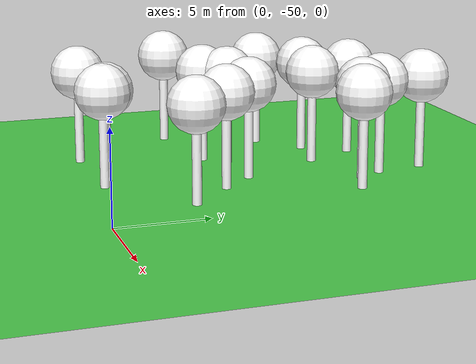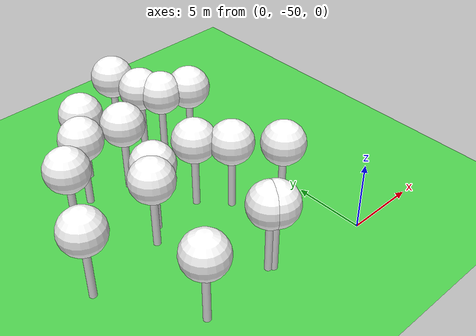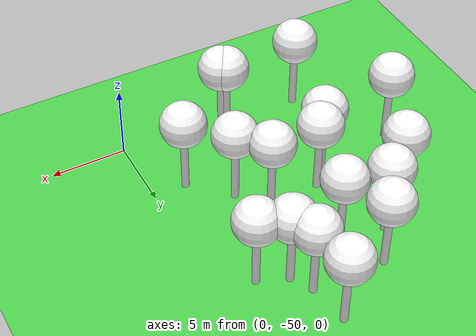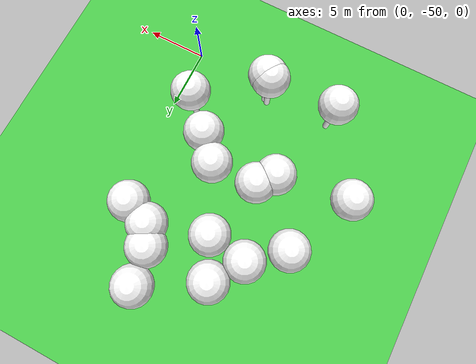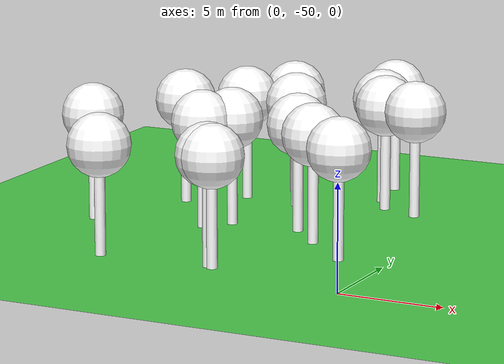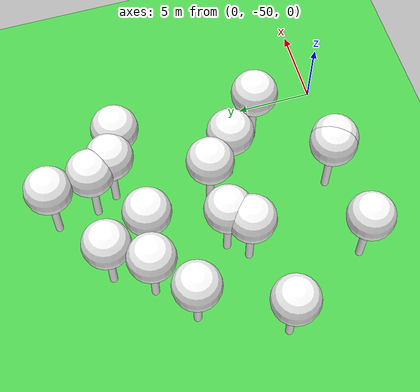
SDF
<sdf version="1.8">
 <world name="forest_world">
  <model name="tree_simple491">
   <static>1</static>
   <link name="link">
    <pose>0 0 0.1 0 -0 0</pose>
    <collision name="collision_trunk">
     <pose>0 0 2 0 -0 0</pose>
     <geometry><cylinder><radius>0.25</radius><length>4</length></cylinder></geometry>
    </collision>
    <collision name="collision_treetop">
     <pose>0 0 5.2 0 -0 0</pose>
     <geometry><sphere><radius>1.5</radius></sphere></geometry>
    </collision>
    <visual name="trunk_491">
     <pose>0 0 2 0 -0 0</pose>
     <geometry><cylinder><radius>0.25</radius><length>4</length></cylinder></geometry>
     <material>
      <ambient>0.5 0.5 0.5 1</ambient>
      <diffuse>1.0 1.0 1.0 1</diffuse>
      <specular>0.0 0.0 0.0 1</specular>
      <pbr>
       <metal>
        <albedo_map>file://textures/tree_simple_trunk.jpg</albedo_map>
        <metalness>0.0</metalness>
        <roughness>0.8</roughness>
       </metal>
      </pbr>
     </material>
    </visual>
    <visual name="treetop_491">
     <pose>0 0 5.2 0 -0 0</pose>
     <geometry><sphere><radius>1.5</radius></sphere></geometry>
     <material>
      <ambient>0.5 0.5 0.5 1</ambient>
      <diffuse>1.0 1.0 1.0 1</diffuse>
      <specular>0.0 0.0 0.0 1</specular>
      <pbr>
       <metal>
        <albedo_map>file://textures/tree_simple_treetop.jpg</albedo_map>
        <metalness>0.0</metalness>
        <roughness>0.9</roughness>
       </metal>
      </pbr>
     </material>
    </visual>
   </link>
   <pose>-12.3902503735 -49.1082665042 0 0 -0 0</pose>
  </model>
  <model name="tree_simple447">
   <static>1</static>
   <link name="link">
    <pose>0 0 0.1 0 -0 0</pose>
    <collision name="collision_trunk">
     <pose>0 0 2 0 -0 0</pose>
     <geometry><cylinder><radius>0.25</radius><length>4</length></cylinder></geometry>
    </collision>
    <collision name="collision_treetop">
     <pose>0 0 5.2 0 -0 0</pose>
     <geometry><sphere><radius>1.5</radius></sphere></geometry>
    </collision>
    <visual name="trunk_447">
     <pose>0 0 2 0 -0 0</pose>
     <geometry><cylinder><radius>0.25</radius><length>4</length></cylinder></geometry>
     <material>
      <ambient>0.5 0.5 0.5 1</ambient>
      <diffuse>1.0 1.0 1.0 1</diffuse>
      <specular>0.0 0.0 0.0 1</specular>
      <pbr>
       <metal>
        <albedo_map>file://textures/tree_simple_trunk.jpg</albedo_map>
        <metalness>0.0</metalness>
        <roughness>0.8</roughness>
       </metal>
      </pbr>
     </material>
    </visual>
    <visual name="treetop_447">
     <pose>0 0 5.2 0 -0 0</pose>
     <geometry><sphere><radius>1.5</radius></sphere></geometry>
     <material>
      <ambient>0.5 0.5 0.5 1</ambient>
      <diffuse>1.0 1.0 1.0 1</diffuse>
      <specular>0.0 0.0 0.0 1</specular>
      <pbr>
       <metal>
        <albedo_map>file://textures/tree_simple_treetop.jpg</albedo_map>
        <metalness>0.0</metalness>
        <roughness>0.9</roughness>
       </metal>
      </pbr>
     </material>
    </visual>
   </link>
   <pose>-6.1509747219 -41.0422803315 0 0 -0 0</pose>
  </model>
  <model name="tree_simple408">
   <static>1</static>
   <link name="link">
    <pose>0 0 0.1 0 -0 0</pose>
    <collision name="collision_trunk">
     <pose>0 0 2 0 -0 0</pose>
     <geometry><cylinder><radius>0.25</radius><length>4</length></cylinder></geometry>
    </collision>
    <collision name="collision_treetop">
     <pose>0 0 5.2 0 -0 0</pose>
     <geometry><sphere><radius>1.5</radius></sphere></geometry>
    </collision>
    <visual name="trunk_408">
     <pose>0 0 2 0 -0 0</pose>
     <geometry><cylinder><radius>0.25</radius><length>4</length></cylinder></geometry>
     <material>
      <ambient>0.5 0.5 0.5 1</ambient>
      <diffuse>1.0 1.0 1.0 1</diffuse>
      <specular>0.0 0.0 0.0 1</specular>
      <pbr>
       <metal>
        <albedo_map>file://textures/tree_simple_trunk.jpg</albedo_map>
        <metalness>0.0</metalness>
        <roughness>0.8</roughness>
       </metal>
      </pbr>
     </material>
    </visual>
    <visual name="treetop_408">
     <pose>0 0 5.2 0 -0 0</pose>
     <geometry><sphere><radius>1.5</radius></sphere></geometry>
     <material>
      <ambient>0.5 0.5 0.5 1</ambient>
      <diffuse>1.0 1.0 1.0 1</diffuse>
      <specular>0.0 0.0 0.0 1</specular>
      <pbr>
       <metal>
        <albedo_map>file://textures/tree_simple_treetop.jpg</albedo_map>
        <metalness>0.0</metalness>
        <roughness>0.9</roughness>
       </metal>
      </pbr>
     </material>
    </visual>
   </link>
   <pose>-16.0994347695 -43.1531583175 0 0 -0 0</pose>
  </model>
  <model name="tree_simple397">
   <static>1</static>
   <link name="link">
    <pose>0 0 0.1 0 -0 0</pose>
    <collision name="collision_trunk">
     <pose>0 0 2 0 -0 0</pose>
     <geometry><cylinder><radius>0.25</radius><length>4</length></cylinder></geometry>
    </collision>
    <collision name="collision_treetop">
     <pose>0 0 5.2 0 -0 0</pose>
     <geometry><sphere><radius>1.5</radius></sphere></geometry>
    </collision>
    <visual name="trunk_397">
     <pose>0 0 2 0 -0 0</pose>
     <geometry><cylinder><radius>0.25</radius><length>4</length></cylinder></geometry>
     <material>
      <ambient>0.5 0.5 0.5 1</ambient>
      <diffuse>1.0 1.0 1.0 1</diffuse>
      <specular>0.0 0.0 0.0 1</specular>
      <pbr>
       <metal>
        <albedo_map>file://textures/tree_simple_trunk.jpg</albedo_map>
        <metalness>0.0</metalness>
        <roughness>0.8</roughness>
       </metal>
      </pbr>
     </material>
    </visual>
    <visual name="treetop_397">
     <pose>0 0 5.2 0 -0 0</pose>
     <geometry><sphere><radius>1.5</radius></sphere></geometry>
     <material>
      <ambient>0.5 0.5 0.5 1</ambient>
      <diffuse>1.0 1.0 1.0 1</diffuse>
      <specular>0.0 0.0 0.0 1</specular>
      <pbr>
       <metal>
        <albedo_map>file://textures/tree_simple_treetop.jpg</albedo_map>
        <metalness>0.0</metalness>
        <roughness>0.9</roughness>
       </metal>
      </pbr>
     </material>
    </visual>
   </link>
   <pose>-11.3370979395 -35.9987020926 0 0 -0 0</pose>
  </model>
  <model name="tree_simple382">
   <static>1</static>
   <link name="link">
    <pose>0 0 0.1 0 -0 0</pose>
    <collision name="collision_trunk">
     <pose>0 0 2 0 -0 0</pose>
     <geometry><cylinder><radius>0.25</radius><length>4</length></cylinder></geometry>
    </collision>
    <collision name="collision_treetop">
     <pose>0 0 5.2 0 -0 0</pose>
     <geometry><sphere><radius>1.5</radius></sphere></geometry>
    </collision>
    <visual name="trunk_382">
     <pose>0 0 2 0 -0 0</pose>
     <geometry><cylinder><radius>0.25</radius><length>4</length></cylinder></geometry>
     <material>
      <ambient>0.5 0.5 0.5 1</ambient>
      <diffuse>1.0 1.0 1.0 1</diffuse>
      <specular>0.0 0.0 0.0 1</specular>
      <pbr>
       <metal>
        <albedo_map>file://textures/tree_simple_trunk.jpg</albedo_map>
        <metalness>0.0</metalness>
        <roughness>0.8</roughness>
       </metal>
      </pbr>
     </material>
    </visual>
    <visual name="treetop_382">
     <pose>0 0 5.2 0 -0 0</pose>
     <geometry><sphere><radius>1.5</radius></sphere></geometry>
     <material>
      <ambient>0.5 0.5 0.5 1</ambient>
      <diffuse>1.0 1.0 1.0 1</diffuse>
      <specular>0.0 0.0 0.0 1</specular>
      <pbr>
       <metal>
        <albedo_map>file://textures/tree_simple_treetop.jpg</albedo_map>
        <metalness>0.0</metalness>
        <roughness>0.9</roughness>
       </metal>
      </pbr>
     </material>
    </visual>
   </link>
   <pose>-13.7339502639 -38.0385425652 0 0 -0 0</pose>
  </model>
  <model name="tree_simple368">
   <static>1</static>
   <link name="link">
    <pose>0 0 0.1 0 -0 0</pose>
    <collision name="collision_trunk">
     <pose>0 0 2 0 -0 0</pose>
     <geometry><cylinder><radius>0.25</radius><length>4</length></cylinder></geometry>
    </collision>
    <collision name="collision_treetop">
     <pose>0 0 5.2 0 -0 0</pose>
     <geometry><sphere><radius>1.5</radius></sphere></geometry>
    </collision>
    <visual name="trunk_368">
     <pose>0 0 2 0 -0 0</pose>
     <geometry><cylinder><radius>0.25</radius><length>4</length></cylinder></geometry>
     <material>
      <ambient>0.5 0.5 0.5 1</ambient>
      <diffuse>1.0 1.0 1.0 1</diffuse>
      <specular>0.0 0.0 0.0 1</specular>
      <pbr>
       <metal>
        <albedo_map>file://textures/tree_simple_trunk.jpg</albedo_map>
        <metalness>0.0</metalness>
        <roughness>0.8</roughness>
       </metal>
      </pbr>
     </material>
    </visual>
    <visual name="treetop_368">
     <pose>0 0 5.2 0 -0 0</pose>
     <geometry><sphere><radius>1.5</radius></sphere></geometry>
     <material>
      <ambient>0.5 0.5 0.5 1</ambient>
      <diffuse>1.0 1.0 1.0 1</diffuse>
      <specular>0.0 0.0 0.0 1</specular>
      <pbr>
       <metal>
        <albedo_map>file://textures/tree_simple_treetop.jpg</albedo_map>
        <metalness>0.0</metalness>
        <roughness>0.9</roughness>
       </metal>
      </pbr>
     </material>
    </visual>
   </link>
   <pose>-2.27490769551 -35.975306792 0 0 -0 0</pose>
  </model>
  <model name="tree_simple334">
   <static>1</static>
   <link name="link">
    <pose>0 0 0.1 0 -0 0</pose>
    <collision name="collision_trunk">
     <pose>0 0 2 0 -0 0</pose>
     <geometry><cylinder><radius>0.25</radius><length>4</length></cylinder></geometry>
    </collision>
    <collision name="collision_treetop">
     <pose>0 0 5.2 0 -0 0</pose>
     <geometry><sphere><radius>1.5</radius></sphere></geometry>
    </collision>
    <visual name="trunk_334">
     <pose>0 0 2 0 -0 0</pose>
     <geometry><cylinder><radius>0.25</radius><length>4</length></cylinder></geometry>
     <material>
      <ambient>0.5 0.5 0.5 1</ambient>
      <diffuse>1.0 1.0 1.0 1</diffuse>
      <specular>0.0 0.0 0.0 1</specular>
      <pbr>
       <metal>
        <albedo_map>file://textures/tree_simple_trunk.jpg</albedo_map>
        <metalness>0.0</metalness>
        <roughness>0.8</roughness>
       </metal>
      </pbr>
     </material>
    </visual>
    <visual name="treetop_334">
     <pose>0 0 5.2 0 -0 0</pose>
     <geometry><sphere><radius>1.5</radius></sphere></geometry>
     <material>
      <ambient>0.5 0.5 0.5 1</ambient>
      <diffuse>1.0 1.0 1.0 1</diffuse>
      <specular>0.0 0.0 0.0 1</specular>
      <pbr>
       <metal>
        <albedo_map>file://textures/tree_simple_treetop.jpg</albedo_map>
        <metalness>0.0</metalness>
        <roughness>0.9</roughness>
       </metal>
      </pbr>
     </material>
    </visual>
   </link>
   <pose>-4.1581298625 -35.2035688942 0 0 -0 0</pose>
  </model>
  <model name="tree_simple227">
   <static>1</static>
   <link name="link">
    <pose>0 0 0.1 0 -0 0</pose>
    <collision name="collision_trunk">
     <pose>0 0 2 0 -0 0</pose>
     <geometry><cylinder><radius>0.25</radius><length>4</length></cylinder></geometry>
    </collision>
    <collision name="collision_treetop">
     <pose>0 0 5.2 0 -0 0</pose>
     <geometry><sphere><radius>1.5</radius></sphere></geometry>
    </collision>
    <visual name="trunk_227">
     <pose>0 0 2 0 -0 0</pose>
     <geometry><cylinder><radius>0.25</radius><length>4</length></cylinder></geometry>
     <material>
      <ambient>0.5 0.5 0.5 1</ambient>
      <diffuse>1.0 1.0 1.0 1</diffuse>
      <specular>0.0 0.0 0.0 1</specular>
      <pbr>
       <metal>
        <albedo_map>file://textures/tree_simple_trunk.jpg</albedo_map>
        <metalness>0.0</metalness>
        <roughness>0.8</roughness>
       </metal>
      </pbr>
     </material>
    </visual>
    <visual name="treetop_227">
     <pose>0 0 5.2 0 -0 0</pose>
     <geometry><sphere><radius>1.5</radius></sphere></geometry>
     <material>
      <ambient>0.5 0.5 0.5 1</ambient>
      <diffuse>1.0 1.0 1.0 1</diffuse>
      <specular>0.0 0.0 0.0 1</specular>
      <pbr>
       <metal>
        <albedo_map>file://textures/tree_simple_treetop.jpg</albedo_map>
        <metalness>0.0</metalness>
        <roughness>0.9</roughness>
       </metal>
      </pbr>
     </material>
    </visual>
   </link>
   <pose>-10.5932066879 -42.3249701995 0 0 -0 0</pose>
  </model>
  <model name="tree_simple143">
   <static>1</static>
   <link name="link">
    <pose>0 0 0.1 0 -0 0</pose>
    <collision name="collision_trunk">
     <pose>0 0 2 0 -0 0</pose>
     <geometry><cylinder><radius>0.25</radius><length>4</length></cylinder></geometry>
    </collision>
    <collision name="collision_treetop">
     <pose>0 0 5.2 0 -0 0</pose>
     <geometry><sphere><radius>1.5</radius></sphere></geometry>
    </collision>
    <visual name="trunk_143">
     <pose>0 0 2 0 -0 0</pose>
     <geometry><cylinder><radius>0.25</radius><length>4</length></cylinder></geometry>
     <material>
      <ambient>0.5 0.5 0.5 1</ambient>
      <diffuse>1.0 1.0 1.0 1</diffuse>
      <specular>0.0 0.0 0.0 1</specular>
      <pbr>
       <metal>
        <albedo_map>file://textures/tree_simple_trunk.jpg</albedo_map>
        <metalness>0.0</metalness>
        <roughness>0.8</roughness>
       </metal>
      </pbr>
     </material>
    </visual>
    <visual name="treetop_143">
     <pose>0 0 5.2 0 -0 0</pose>
     <geometry><sphere><radius>1.5</radius></sphere></geometry>
     <material>
      <ambient>0.5 0.5 0.5 1</ambient>
      <diffuse>1.0 1.0 1.0 1</diffuse>
      <specular>0.0 0.0 0.0 1</specular>
      <pbr>
       <metal>
        <albedo_map>file://textures/tree_simple_treetop.jpg</albedo_map>
        <metalness>0.0</metalness>
        <roughness>0.9</roughness>
       </metal>
      </pbr>
     </material>
    </visual>
   </link>
   <pose>-9.58958340045 -41.1660757416 0 0 -0 0</pose>
  </model>
  <model name="tree_simple126">
   <static>1</static>
   <link name="link">
    <pose>0 0 0.1 0 -0 0</pose>
    <collision name="collision_trunk">
     <pose>0 0 2 0 -0 0</pose>
     <geometry><cylinder><radius>0.25</radius><length>4</length></cylinder></geometry>
    </collision>
    <collision name="collision_treetop">
     <pose>0 0 5.2 0 -0 0</pose>
     <geometry><sphere><radius>1.5</radius></sphere></geometry>
    </collision>
    <visual name="trunk_126">
     <pose>0 0 2 0 -0 0</pose>
     <geometry><cylinder><radius>0.25</radius><length>4</length></cylinder></geometry>
     <material>
      <ambient>0.5 0.5 0.5 1</ambient>
      <diffuse>1.0 1.0 1.0 1</diffuse>
      <specular>0.0 0.0 0.0 1</specular>
      <pbr>
       <metal>
        <albedo_map>file://textures/tree_simple_trunk.jpg</albedo_map>
        <metalness>0.0</metalness>
        <roughness>0.8</roughness>
       </metal>
      </pbr>
     </material>
    </visual>
    <visual name="treetop_126">
     <pose>0 0 5.2 0 -0 0</pose>
     <geometry><sphere><radius>1.5</radius></sphere></geometry>
     <material>
      <ambient>0.5 0.5 0.5 1</ambient>
      <diffuse>1.0 1.0 1.0 1</diffuse>
      <specular>0.0 0.0 0.0 1</specular>
      <pbr>
       <metal>
        <albedo_map>file://textures/tree_simple_treetop.jpg</albedo_map>
        <metalness>0.0</metalness>
        <roughness>0.9</roughness>
       </metal>
      </pbr>
     </material>
    </visual>
   </link>
   <pose>-8.40128153864 -36.4846341971 0 0 -0 0</pose>
  </model>
  <model name="tree_simple114">
   <static>1</static>
   <link name="link">
    <pose>0 0 0.1 0 -0 0</pose>
    <collision name="collision_trunk">
     <pose>0 0 2 0 -0 0</pose>
     <geometry><cylinder><radius>0.25</radius><length>4</length></cylinder></geometry>
    </collision>
    <collision name="collision_treetop">
     <pose>0 0 5.2 0 -0 0</pose>
     <geometry><sphere><radius>1.5</radius></sphere></geometry>
    </collision>
    <visual name="trunk_114">
     <pose>0 0 2 0 -0 0</pose>
     <geometry><cylinder><radius>0.25</radius><length>4</length></cylinder></geometry>
     <material>
      <ambient>0.5 0.5 0.5 1</ambient>
      <diffuse>1.0 1.0 1.0 1</diffuse>
      <specular>0.0 0.0 0.0 1</specular>
      <pbr>
       <metal>
        <albedo_map>file://textures/tree_simple_trunk.jpg</albedo_map>
        <metalness>0.0</metalness>
        <roughness>0.8</roughness>
       </metal>
      </pbr>
     </material>
    </visual>
    <visual name="treetop_114">
     <pose>0 0 5.2 0 -0 0</pose>
     <geometry><sphere><radius>1.5</radius></sphere></geometry>
     <material>
      <ambient>0.5 0.5 0.5 1</ambient>
      <diffuse>1.0 1.0 1.0 1</diffuse>
      <specular>0.0 0.0 0.0 1</specular>
      <pbr>
       <metal>
        <albedo_map>file://textures/tree_simple_treetop.jpg</albedo_map>
        <metalness>0.0</metalness>
        <roughness>0.9</roughness>
       </metal>
      </pbr>
     </material>
    </visual>
   </link>
   <pose>-2.17757547104 -45.1286714355 0 0 -0 0</pose>
  </model>
  <model name="tree_simple102">
   <static>1</static>
   <link name="link">
    <pose>0 0 0.1 0 -0 0</pose>
    <collision name="collision_trunk">
     <pose>0 0 2 0 -0 0</pose>
     <geometry><cylinder><radius>0.25</radius><length>4</length></cylinder></geometry>
    </collision>
    <collision name="collision_treetop">
     <pose>0 0 5.2 0 -0 0</pose>
     <geometry><sphere><radius>1.5</radius></sphere></geometry>
    </collision>
    <visual name="trunk_102">
     <pose>0 0 2 0 -0 0</pose>
     <geometry><cylinder><radius>0.25</radius><length>4</length></cylinder></geometry>
     <material>
      <ambient>0.5 0.5 0.5 1</ambient>
      <diffuse>1.0 1.0 1.0 1</diffuse>
      <specular>0.0 0.0 0.0 1</specular>
      <pbr>
       <metal>
        <albedo_map>file://textures/tree_simple_trunk.jpg</albedo_map>
        <metalness>0.0</metalness>
        <roughness>0.8</roughness>
       </metal>
      </pbr>
     </material>
    </visual>
    <visual name="treetop_102">
     <pose>0 0 5.2 0 -0 0</pose>
     <geometry><sphere><radius>1.5</radius></sphere></geometry>
     <material>
      <ambient>0.5 0.5 0.5 1</ambient>
      <diffuse>1.0 1.0 1.0 1</diffuse>
      <specular>0.0 0.0 0.0 1</specular>
      <pbr>
       <metal>
        <albedo_map>file://textures/tree_simple_treetop.jpg</albedo_map>
        <metalness>0.0</metalness>
        <roughness>0.9</roughness>
       </metal>
      </pbr>
     </material>
    </visual>
   </link>
   <pose>-9.77870020383 -33.6944059178 0 0 -0 0</pose>
  </model>
  <model name="tree_simple90">
   <static>1</static>
   <link name="link">
    <pose>0 0 0.1 0 -0 0</pose>
    <collision name="collision_trunk">
     <pose>0 0 2 0 -0 0</pose>
     <geometry><cylinder><radius>0.25</radius><length>4</length></cylinder></geometry>
    </collision>
    <collision name="collision_treetop">
     <pose>0 0 5.2 0 -0 0</pose>
     <geometry><sphere><radius>1.5</radius></sphere></geometry>
    </collision>
    <visual name="trunk_90">
     <pose>0 0 2 0 -0 0</pose>
     <geometry><cylinder><radius>0.25</radius><length>4</length></cylinder></geometry>
     <material>
      <ambient>0.5 0.5 0.5 1</ambient>
      <diffuse>1.0 1.0 1.0 1</diffuse>
      <specular>0.0 0.0 0.0 1</specular>
      <pbr>
       <metal>
        <albedo_map>file://textures/tree_simple_trunk.jpg</albedo_map>
        <metalness>0.0</metalness>
        <roughness>0.8</roughness>
       </metal>
      </pbr>
     </material>
    </visual>
    <visual name="treetop_90">
     <pose>0 0 5.2 0 -0 0</pose>
     <geometry><sphere><radius>1.5</radius></sphere></geometry>
     <material>
      <ambient>0.5 0.5 0.5 1</ambient>
      <diffuse>1.0 1.0 1.0 1</diffuse>
      <specular>0.0 0.0 0.0 1</specular>
      <pbr>
       <metal>
        <albedo_map>file://textures/tree_simple_treetop.jpg</albedo_map>
        <metalness>0.0</metalness>
        <roughness>0.9</roughness>
       </metal>
      </pbr>
     </material>
    </visual>
   </link>
   <pose>-7.02064767481 -48.7132309456 0 0 -0 0</pose>
  </model>
  <model name="tree_simple58">
   <static>1</static>
   <link name="link">
    <pose>0 0 0.1 0 -0 0</pose>
    <collision name="collision_trunk">
     <pose>0 0 2 0 -0 0</pose>
     <geometry><cylinder><radius>0.25</radius><length>4</length></cylinder></geometry>
    </collision>
    <collision name="collision_treetop">
     <pose>0 0 5.2 0 -0 0</pose>
     <geometry><sphere><radius>1.5</radius></sphere></geometry>
    </collision>
    <visual name="trunk_58">
     <pose>0 0 2 0 -0 0</pose>
     <geometry><cylinder><radius>0.25</radius><length>4</length></cylinder></geometry>
     <material>
      <ambient>0.5 0.5 0.5 1</ambient>
      <diffuse>1.0 1.0 1.0 1</diffuse>
      <specular>0.0 0.0 0.0 1</specular>
      <pbr>
       <metal>
        <albedo_map>file://textures/tree_simple_trunk.jpg</albedo_map>
        <metalness>0.0</metalness>
        <roughness>0.8</roughness>
       </metal>
      </pbr>
     </material>
    </visual>
    <visual name="treetop_58">
     <pose>0 0 5.2 0 -0 0</pose>
     <geometry><sphere><radius>1.5</radius></sphere></geometry>
     <material>
      <ambient>0.5 0.5 0.5 1</ambient>
      <diffuse>1.0 1.0 1.0 1</diffuse>
      <specular>0.0 0.0 0.0 1</specular>
      <pbr>
       <metal>
        <albedo_map>file://textures/tree_simple_treetop.jpg</albedo_map>
        <metalness>0.0</metalness>
        <roughness>0.9</roughness>
       </metal>
      </pbr>
     </material>
    </visual>
   </link>
   <pose>-4.91491945588 -33.8245636998 0 0 -0 0</pose>
  </model>
  <model name="tree_simple23">
   <static>1</static>
   <link name="link">
    <pose>0 0 0.1 0 -0 0</pose>
    <collision name="collision_trunk">
     <pose>0 0 2 0 -0 0</pose>
     <geometry><cylinder><radius>0.25</radius><length>4</length></cylinder></geometry>
    </collision>
    <collision name="collision_treetop">
     <pose>0 0 5.2 0 -0 0</pose>
     <geometry><sphere><radius>1.5</radius></sphere></geometry>
    </collision>
    <visual name="trunk_23">
     <pose>0 0 2 0 -0 0</pose>
     <geometry><cylinder><radius>0.25</radius><length>4</length></cylinder></geometry>
     <material>
      <ambient>0.5 0.5 0.5 1</ambient>
      <diffuse>1.0 1.0 1.0 1</diffuse>
      <specular>0.0 0.0 0.0 1</specular>
      <pbr>
       <metal>
        <albedo_map>file://textures/tree_simple_trunk.jpg</albedo_map>
        <metalness>0.0</metalness>
        <roughness>0.8</roughness>
       </metal>
      </pbr>
     </material>
    </visual>
    <visual name="treetop_23">
     <pose>0 0 5.2 0 -0 0</pose>
     <geometry><sphere><radius>1.5</radius></sphere></geometry>
     <material>
      <ambient>0.5 0.5 0.5 1</ambient>
      <diffuse>1.0 1.0 1.0 1</diffuse>
      <specular>0.0 0.0 0.0 1</specular>
      <pbr>
       <metal>
        <albedo_map>file://textures/tree_simple_treetop.jpg</albedo_map>
        <metalness>0.0</metalness>
        <roughness>0.9</roughness>
       </metal>
      </pbr>
     </material>
    </visual>
   </link>
   <pose>-6.72422340922 -48.8953285145 0 0 -0 0</pose>
  </model>
  <model name="tree_simple10">
   <static>1</static>
   <link name="link">
    <pose>0 0 0.1 0 -0 0</pose>
    <collision name="collision_trunk">
     <pose>0 0 2 0 -0 0</pose>
     <geometry><cylinder><radius>0.25</radius><length>4</length></cylinder></geometry>
    </collision>
    <collision name="collision_treetop">
     <pose>0 0 5.2 0 -0 0</pose>
     <geometry><sphere><radius>1.5</radius></sphere></geometry>
    </collision>
    <visual name="trunk_10">
     <pose>0 0 2 0 -0 0</pose>
     <geometry><cylinder><radius>0.25</radius><length>4</length></cylinder></geometry>
     <material>
      <ambient>0.5 0.5 0.5 1</ambient>
      <diffuse>1.0 1.0 1.0 1</diffuse>
      <specular>0.0 0.0 0.0 1</specular>
      <pbr>
       <metal>
        <albedo_map>file://textures/tree_simple_trunk.jpg</albedo_map>
        <metalness>0.0</metalness>
        <roughness>0.8</roughness>
       </metal>
      </pbr>
     </material>
    </visual>
    <visual name="treetop_10">
     <pose>0 0 5.2 0 -0 0</pose>
     <geometry><sphere><radius>1.5</radius></sphere></geometry>
     <material>
      <ambient>0.5 0.5 0.5 1</ambient>
      <diffuse>1.0 1.0 1.0 1</diffuse>
      <specular>0.0 0.0 0.0 1</specular>
      <pbr>
       <metal>
        <albedo_map>file://textures/tree_simple_treetop.jpg</albedo_map>
        <metalness>0.0</metalness>
        <roughness>0.9</roughness>
       </metal>
      </pbr>
     </material>
    </visual>
   </link>
   <pose>-5.37126893009 -31.1523453125 0 0 -0 0</pose>
  </model>
  <model name="tree_simple4">
   <static>1</static>
   <link name="link">
    <pose>0 0 0.1 0 -0 0</pose>
    <collision name="collision_trunk">
     <pose>0 0 2 0 -0 0</pose>
     <geometry><cylinder><radius>0.25</radius><length>4</length></cylinder></geometry>
    </collision>
    <collision name="collision_treetop">
     <pose>0 0 5.2 0 -0 0</pose>
     <geometry><sphere><radius>1.5</radius></sphere></geometry>
    </collision>
    <visual name="trunk_4">
     <pose>0 0 2 0 -0 0</pose>
     <geometry><cylinder><radius>0.25</radius><length>4</length></cylinder></geometry>
     <material>
      <ambient>0.5 0.5 0.5 1</ambient>
      <diffuse>1.0 1.0 1.0 1</diffuse>
      <specular>0.0 0.0 0.0 1</specular>
      <pbr>
       <metal>
        <albedo_map>file://textures/tree_simple_trunk.jpg</albedo_map>
        <metalness>0.0</metalness>
        <roughness>0.8</roughness>
       </metal>
      </pbr>
     </material>
    </visual>
    <visual name="treetop_4">
     <pose>0 0 5.2 0 -0 0</pose>
     <geometry><sphere><radius>1.5</radius></sphere></geometry>
     <material>
      <ambient>0.5 0.5 0.5 1</ambient>
      <diffuse>1.0 1.0 1.0 1</diffuse>
      <specular>0.0 0.0 0.0 1</specular>
      <pbr>
       <metal>
        <albedo_map>file://textures/tree_simple_treetop.jpg</albedo_map>
        <metalness>0.0</metalness>
        <roughness>0.9</roughness>
       </metal>
      </pbr>
     </material>
    </visual>
   </link>
   <pose>-4.53333118385 -42.8142187994 0 0 -0 0</pose>
  </model>
  <model name="ground_plane">
   <static>true</static>
   <link name="link">
    <collision name="collision">
     <geometry><plane><normal>0 0 1</normal><size>250 250</size></plane></geometry>
     <surface><friction><ode><mu>1</mu><mu2>1</mu2></ode></friction></surface>
    </collision>
    <visual name="grass">
     <cast_shadows>false</cast_shadows>
     <geometry><mesh><uri>file://textures/grass_plane.dae</uri><scale>1 1 1</scale></mesh></geometry>
     <material>
      <ambient>0.2 0.6 0.2 1</ambient>
      <diffuse>0.3 0.8 0.3 1</diffuse>
      <specular>0.1 0.1 0.1 1</specular>
      <pbr>
       <metal>
        <albedo_map>file://textures/grass_seamless.jpg</albedo_map>
        <metalness>0.0</metalness>
        <roughness>0.9</roughness>
       </metal>
      </pbr>
     </material>
    </visual>
   </link>
  </model>
 </world>
</sdf>
